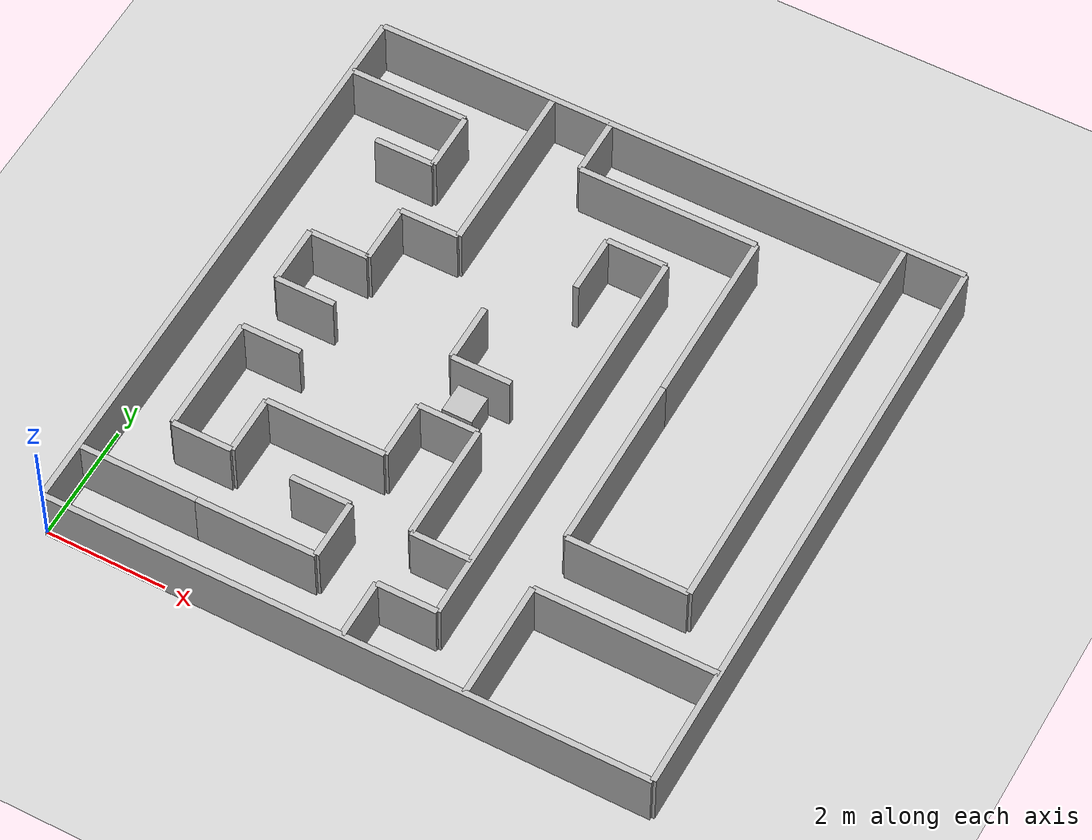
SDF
<?xml version="1.0" ?>
<sdf version="1.7">

  <world name="multi_robot_world">

    <!-- Ground plane -->
    <include>
      <uri>model://ground_plane</uri>
    </include>

    <!-- Sun -->
    <include>
      <uri>model://sun</uri>
    </include>

    <!-- Walls -->

    <include>
      <uri>model://wall_10_x</uri>
      <name>wall_1</name>
      <pose>5 0 0.5 0 0 0</pose>
    </include>

    <include>
      <uri>model://wall_10_x</uri>
      <name>wall_2</name>
      <pose>5 10 0.5 0 0 0</pose>
    </include>

    <include>
      <uri>model://wall_10_y</uri>
      <name>wall_3</name>
      <pose>0 5 0.5 0 0 0</pose>
    </include>

    <include>
      <uri>model://wall_10_y</uri>
      <name>wall_4</name>
      <pose>10 5 0.5 0 0 0</pose>
    </include>

    <include>
      <uri>model://wall_2_x</uri>
      <name>wall_5</name>
      <pose>1 1 0.5 0 0 0</pose>
    </include>

    <include>
      <uri>model://wall_2_x</uri>
      <name>wall_6</name>
      <pose>3 1 0.5 0 0 0</pose>
    </include>

    <include>
      <uri>model://wall_1_y</uri>
      <name>wall_7</name>
      <pose>5 0.5 0.5 0 0 0</pose>
    </include>

    <include>
      <uri>model://wall_2_x</uri>
      <name>wall_8</name>
      <pose>1 9 0.5 0 0 0</pose>
    </include>

     <include>
      <uri>model://wall_1_x</uri>
      <name>wall_9</name>
      <pose>1.5 8 0.5 0 0 0</pose>
    </include>

    <include>
      <uri>model://wall_1_y</uri>
      <name>wall_10</name>
      <pose>2 8.5 0.5 0 0 0</pose>
    </include>

    <include>
      <uri>model://wall_3_y</uri>
      <name>wall_11</name>
      <pose>3 8.5 0.5 0 0 0</pose>
    </include>

    <include>
      <uri>model://wall_2_y</uri>
      <name>wall_12</name>
      <pose>1 3 0.5 0 0 0</pose>
    </include>

    <include>
      <uri>model://wall_1_x</uri>
      <name>wall_13</name>
      <pose>3.5 2 0.5 0 0 0</pose>
    </include>

    <include>
      <uri>model://wall_1_x</uri>
      <name>wall_14</name>
      <pose>1.5 4 0.5 0 0 0</pose>
    </include>

    <include>
      <uri>model://wall_1_y</uri>
      <name>wall_15</name>
      <pose>4 1.5 0.5 0 0 0</pose>
    </include>

    <include>
      <uri>model://wall_1_x</uri>
      <name>wall_16</name>
      <pose>5.5 1 0.5 0 0 0</pose>
    </include>

    <include>
      <uri>model://wall_1_x</uri>
      <name>wall_17</name>
      <pose>1.5 2 0.5 0 0 0</pose>
    </include>

    <include>
      <uri>model://wall_1_y</uri>
      <name>wall_18</name>
      <pose>2 2.5 0.5 0 0 0</pose>
    </include>

    <include>
      <uri>model://wall_2_x</uri>
      <name>wall_19</name>
      <pose>3 3 0.5 0 0 0</pose>
    </include>

    <include>
      <uri>model://wall_2_y</uri>
      <name>wall_20</name>
      <pose>7 1 0.5 0 0 0</pose>
    </include>

    <include>
      <uri>model://wall_3_x</uri>
      <name>wall_21</name>
      <pose>8.5 2 0.5 0 0 0</pose>
    </include>

    <include>
      <uri>model://wall_1_y</uri>
      <name>wall_22</name>
      <pose>4 3.5 0.5 0 0 0</pose>
    </include>

    <include>
      <uri>model://wall_1_x</uri>
      <name>wall_23</name>
      <pose>4.5 4 0.5 0 0 0</pose>
    </include>

    <include>
      <uri>model://wall_1_x</uri>
      <name>wall_24</name>
      <pose>4.5 5 0.5 0 0 0</pose>
    </include>

    <include>
      <uri>model://wall_1_y</uri>
      <name>wall_25</name>
      <pose>4 5.5 0.5 0 0 0</pose>
    </include>

    <include>
      <uri>model://wall_1_x</uri>
      <name>wall_26</name>
      <pose>2.5 7 0.5 0 0 0</pose>
    </include>

    <include>
      <uri>model://wall_1_x</uri>
      <name>wall_27</name>
      <pose>1.5 6 0.5 0 0 0</pose>
    </include>

    <include>
      <uri>model://wall_1_x</uri>
      <name>wall_28</name>
      <pose>1.5 5 0.5 0 0 0</pose>
    </include>

    <include>
      <uri>model://wall_1_y</uri>
      <name>wall_29</name>
      <pose>2 6.5 0.5 0 0 0</pose>
    </include>

    <include>
      <uri>model://wall_1_y</uri>
      <name>wall_30</name>
      <pose>1 5.5 0.5 0 0 0</pose>
    </include>

    <include>
      <uri>model://wall_1_y</uri>
      <name>wall_31</name>
      <pose>4 9.5 0.5 0 0 0</pose>
    </include>

    <include>
      <uri>model://wall_3_x</uri>
      <name>wall_32</name>
      <pose>5.5 9 0.5 0 0 0</pose>
    </include>

    <include>
      <uri>model://wall_1_y</uri>
      <name>wall_33</name>
      <pose>5 7.5 0.5 0 0 0</pose>
    </include>

    <include>
      <uri>model://wall_1_x</uri>
      <name>wall_34</name>
      <pose>5.5 8 0.5 0 0 0</pose>
    </include>

    <include>
      <uri>model://wall_2_y</uri>
      <name>wall_35</name>
      <pose>5 3 0.5 0 0 0</pose>
    </include>

    <include>
      <uri>model://wall_1_x</uri>
      <name>wall_36</name>
      <pose>5.5 2 0.5 0 0 0</pose>
    </include>

    <include>
      <uri>model://wall_7_y</uri>
      <name>wall_37</name>
      <pose>6 4.5 0.5 0 0 0</pose>
    </include>

    <include>
      <uri>model://wall_7_y</uri>
      <name>wall_38</name>
      <pose>9 6.5 0.5 0 0 0</pose>
    </include>

    <include>
      <uri>model://wall_2_x</uri>
      <name>wall_39</name>
      <pose>8 3 0.5 0 0 0</pose>
    </include>

    <include>
      <uri>model://wall_3_y</uri>
      <name>wall_40</name>
      <pose>7 4.5 0.5 0 0 0</pose>
    </include>

    <include>
      <uri>model://wall_3_y</uri>
      <name>wall_41</name>
      <pose>7 7.5 0.5 0 0 0</pose>
    </include>

    <!-- Target Object -->
    <model name="target_box">
      <pose>4.5 4.5 0.5 0 0 0</pose>
      <link name="link">
      <collision name="collision">
        <geometry>
          <box><size>0.5 0.5 0.5</size></box>
        </geometry>
      </collision>
      <visual name="visual">
      <geometry>
        <box><size>0.5 0.5 0.5</size></box>
      </geometry>
      </visual>
      </link>
    </model>

  </world>
</sdf>

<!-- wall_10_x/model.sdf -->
<sdf version="1.7">
  <model name="wall_10_x">
   <static>true</static>
    <link name="link">
      <collision name="collision">
        <geometry>
          <box>
            <size>10 0.1 1</size>  <!-- default size -->
          </box>
        </geometry>
      </collision>
      <visual name="visual">
        <geometry>
          <box>
            <size>10 0.1 1</size>
          </box>
        </geometry>
      </visual>
    </link>
  </model>
</sdf>

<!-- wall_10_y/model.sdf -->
<sdf version="1.7">
  <model name="wall_10_y">
   <static>true</static>
    <link name="link">
      <collision name="collision">
        <geometry>
          <box>
            <size>0.1 10 1</size>  <!-- default size -->
          </box>
        </geometry>
      </collision>
      <visual name="visual">
        <geometry>
          <box>
            <size>0.1 10 1</size>
          </box>
        </geometry>
      </visual>
    </link>
  </model>
</sdf>

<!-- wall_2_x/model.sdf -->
<sdf version="1.7">
  <model name="wall_2_x">
   <static>true</static>
    <link name="link">
      <collision name="collision">
        <geometry>
          <box>
            <size>2 0.1 1</size>  <!-- default size -->
          </box>
        </geometry>
      </collision>
      <visual name="visual">
        <geometry>
          <box>
            <size>2 0.1 1</size>
          </box>
        </geometry>
      </visual>
    </link>
  </model>
</sdf>

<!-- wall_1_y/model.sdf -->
<sdf version="1.7">
  <model name="wall_1_y">
   <static>true</static>
    <link name="link">
      <collision name="collision">
        <geometry>
          <box>
            <size>0.1 1 1</size>  <!-- default size -->
          </box>
        </geometry>
      </collision>
      <visual name="visual">
        <geometry>
          <box>
            <size>0.1 1 1</size>
          </box>
        </geometry>
      </visual>
    </link>
  </model>
</sdf>

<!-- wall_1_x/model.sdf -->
<sdf version="1.7">
  <model name="wall_1_x">
   <static>true</static>
    <link name="link">
      <collision name="collision">
        <geometry>
          <box>
            <size>1 0.1 1</size>  <!-- default size -->
          </box>
        </geometry>
      </collision>
      <visual name="visual">
        <geometry>
          <box>
            <size>1 0.1 1</size>
          </box>
        </geometry>
      </visual>
    </link>
  </model>
</sdf>

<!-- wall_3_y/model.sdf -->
<sdf version="1.7">
  <model name="wall_3_y">
   <static>true</static>
    <link name="link">
      <collision name="collision">
        <geometry>
          <box>
            <size>0.1 3 1</size>  <!-- default size -->
          </box>
        </geometry>
      </collision>
      <visual name="visual">
        <geometry>
          <box>
            <size>0.1 3 1</size>
          </box>
        </geometry>
      </visual>
    </link>
  </model>
</sdf>

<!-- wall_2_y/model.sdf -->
<sdf version="1.7">
  <model name="wall_2_y">
   <static>true</static>
    <link name="link">
      <collision name="collision">
        <geometry>
          <box>
            <size>0.1 2 1</size>  <!-- default size -->
          </box>
        </geometry>
      </collision>
      <visual name="visual">
        <geometry>
          <box>
            <size>0.1 2 1</size>
          </box>
        </geometry>
      </visual>
    </link>
  </model>
</sdf>

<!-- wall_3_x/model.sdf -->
<sdf version="1.7">
  <model name="wall_3_x">
   <static>true</static>
    <link name="link">
      <collision name="collision">
        <geometry>
          <box>
            <size>3 0.1 1</size>  <!-- default size -->
          </box>
        </geometry>
      </collision>
      <visual name="visual">
        <geometry>
          <box>
            <size>3 0.1 1</size>
          </box>
        </geometry>
      </visual>
    </link>
  </model>
</sdf>

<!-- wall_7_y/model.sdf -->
<sdf version="1.7">
  <model name="wall_7_y">
   <static>true</static>
    <link name="link">
      <collision name="collision">
        <geometry>
          <box>
            <size>0.1 7 1</size>  <!-- default size -->
          </box>
        </geometry>
      </collision>
      <visual name="visual">
        <geometry>
          <box>
            <size>0.1 7 1</size>
          </box>
        </geometry>
      </visual>
    </link>
  </model>
</sdf>
